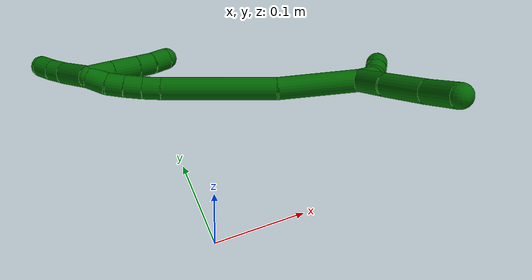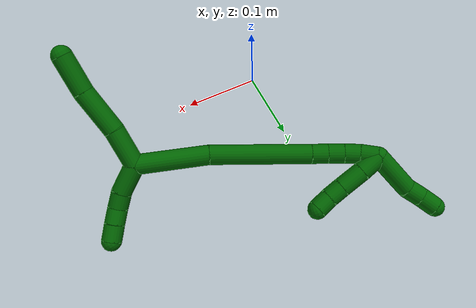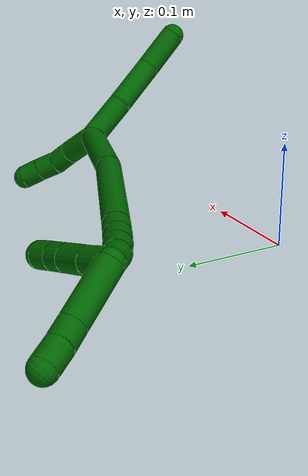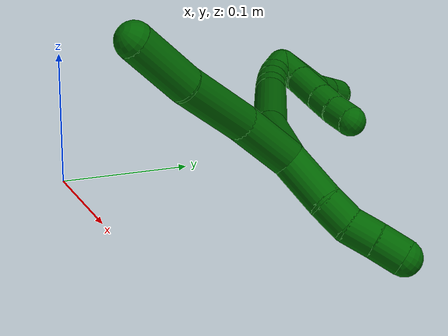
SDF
<sdf version="1.7">
 <world name="default">
  <model name="6">
   <static>0</static>
   <link name="6">
    <collision name="collision-cylinder-e_1_2_8">
     <pose>-0.000362 -7.5e-05 -0.023882 3.13847 -0.015165 -2.7356</pose>
     <geometry><cylinder><radius>0.0125</radius><length>0.04777</length></cylinder></geometry>
     <surface>
      <friction><ode><mu>1.16</mu><mu2>1.16</mu2><slip1>0</slip1><slip2>0</slip2></ode></friction>
      <contact><ode><kp>1e+06</kp><kd>1</kd><max_vel>0</max_vel><min_depth>0.001</min_depth></ode></contact>
     </surface>
    </collision>
    <visual name="visual-cylinder-e_1_2_8">
     <pose>-0.000362 -7.5e-05 -0.023882 3.13847 -0.015165 -2.7356</pose>
     <geometry><cylinder><radius>0.0125</radius><length>0.04777</length></cylinder></geometry>
     <material><ambient>0 0.392157 0.003922 1</ambient></material>
    </visual>
    <collision name="collision-cylinder-e_2_8_9">
     <pose>0.002362 -0.002535 -0.075269 3.05507 0.111337 1.82075</pose>
     <geometry><cylinder><radius>0.0125</radius><length>0.055561</length></cylinder></geometry>
     <surface>
      <friction><ode><mu>1.16</mu><mu2>1.16</mu2><slip1>0</slip1><slip2>0</slip2></ode></friction>
      <contact><ode><kp>1e+06</kp><kd>1</kd><max_vel>0</max_vel><min_depth>0.001</min_depth></ode></contact>
     </surface>
    </collision>
    <visual name="visual-cylinder-e_2_8_9">
     <pose>0.002362 -0.002535 -0.075269 3.05507 0.111337 1.82075</pose>
     <geometry><cylinder><radius>0.0125</radius><length>0.055561</length></cylinder></geometry>
     <material><ambient>0 0.392157 0.003922 1</ambient></material>
    </visual>
    <collision name="collision-cylinder-e_3_9_6">
     <pose>0.004257 -0.005433 -0.126073 3.11958 -0.051084 -2.32789</pose>
     <geometry><cylinder><radius>0.0125</radius><length>0.046669</length></cylinder></geometry>
     <surface>
      <friction><ode><mu>1.16</mu><mu2>1.16</mu2><slip1>0</slip1><slip2>0</slip2></ode></friction>
      <contact><ode><kp>1e+06</kp><kd>1</kd><max_vel>0</max_vel><min_depth>0.001</min_depth></ode></contact>
     </surface>
    </collision>
    <visual name="visual-cylinder-e_3_9_6">
     <pose>0.004257 -0.005433 -0.126073 3.11958 -0.051084 -2.32789</pose>
     <geometry><cylinder><radius>0.0125</radius><length>0.046669</length></cylinder></geometry>
     <material><ambient>0 0.392157 0.003922 1</ambient></material>
    </visual>
    <collision name="collision-cylinder-e_1_2_10">
     <pose>0.011889 -0.010127 0.010972 0.745352 0.672435 0.271579</pose>
     <geometry><cylinder><radius>0.0125</radius><length>0.038172</length></cylinder></geometry>
     <surface>
      <friction><ode><mu>1.16</mu><mu2>1.16</mu2><slip1>0</slip1><slip2>0</slip2></ode></friction>
      <contact><ode><kp>1e+06</kp><kd>1</kd><max_vel>0</max_vel><min_depth>0.001</min_depth></ode></contact>
     </surface>
    </collision>
    <visual name="visual-cylinder-e_1_2_10">
     <pose>0.011889 -0.010127 0.010972 0.745352 0.672435 0.271579</pose>
     <geometry><cylinder><radius>0.0125</radius><length>0.038172</length></cylinder></geometry>
     <material><ambient>0 0.392157 0.003922 1</ambient></material>
    </visual>
    <collision name="collision-cylinder-e_2_10_11">
     <pose>0.029017 -0.025036 0.029524 0.562833 0.529074 0.156301</pose>
     <geometry><cylinder><radius>0.0125</radius><length>0.020763</length></cylinder></geometry>
     <surface>
      <friction><ode><mu>1.16</mu><mu2>1.16</mu2><slip1>0</slip1><slip2>0</slip2></ode></friction>
      <contact><ode><kp>1e+06</kp><kd>1</kd><max_vel>0</max_vel><min_depth>0.001</min_depth></ode></contact>
     </surface>
    </collision>
    <visual name="visual-cylinder-e_2_10_11">
     <pose>0.029017 -0.025036 0.029524 0.562833 0.529074 0.156301</pose>
     <geometry><cylinder><radius>0.0125</radius><length>0.020763</length></cylinder></geometry>
     <material><ambient>0 0.392157 0.003922 1</ambient></material>
    </visual>
    <collision name="collision-cylinder-e_3_11_12">
     <pose>0.037059 -0.035997 0.044602 0.689321 0.280767 0.101373</pose>
     <geometry><cylinder><radius>0.0125</radius><length>0.020225</length></cylinder></geometry>
     <surface>
      <friction><ode><mu>1.16</mu><mu2>1.16</mu2><slip1>0</slip1><slip2>0</slip2></ode></friction>
      <contact><ode><kp>1e+06</kp><kd>1</kd><max_vel>0</max_vel><min_depth>0.001</min_depth></ode></contact>
     </surface>
    </collision>
    <visual name="visual-cylinder-e_3_11_12">
     <pose>0.037059 -0.035997 0.044602 0.689321 0.280767 0.101373</pose>
     <geometry><cylinder><radius>0.0125</radius><length>0.020225</length></cylinder></geometry>
     <material><ambient>0 0.392157 0.003922 1</ambient></material>
    </visual>
    <collision name="collision-cylinder-e_4_12_5">
     <pose>0.042923 -0.048138 0.060079 0.64158 0.298235 0.099752</pose>
     <geometry><cylinder><radius>0.0125</radius><length>0.02084</length></cylinder></geometry>
     <surface>
      <friction><ode><mu>1.16</mu><mu2>1.16</mu2><slip1>0</slip1><slip2>0</slip2></ode></friction>
      <contact><ode><kp>1e+06</kp><kd>1</kd><max_vel>0</max_vel><min_depth>0.001</min_depth></ode></contact>
     </surface>
    </collision>
    <visual name="visual-cylinder-e_4_12_5">
     <pose>0.042923 -0.048138 0.060079 0.64158 0.298235 0.099752</pose>
     <geometry><cylinder><radius>0.0125</radius><length>0.02084</length></cylinder></geometry>
     <material><ambient>0 0.392157 0.003922 1</ambient></material>
    </visual>
    <collision name="collision-cylinder-e_1_2_13">
     <pose>-0.028246 0.030779 0.016753 -1.07235 -0.678409 0.41336</pose>
     <geometry><cylinder><radius>0.0125</radius><length>0.090019</length></cylinder></geometry>
     <surface>
      <friction><ode><mu>1.16</mu><mu2>1.16</mu2><slip1>0</slip1><slip2>0</slip2></ode></friction>
      <contact><ode><kp>1e+06</kp><kd>1</kd><max_vel>0</max_vel><min_depth>0.001</min_depth></ode></contact>
     </surface>
    </collision>
    <visual name="visual-cylinder-e_1_2_13">
     <pose>-0.028246 0.030779 0.016753 -1.07235 -0.678409 0.41336</pose>
     <geometry><cylinder><radius>0.0125</radius><length>0.090019</length></cylinder></geometry>
     <material><ambient>0 0.392157 0.003922 1</ambient></material>
    </visual>
    <collision name="collision-cylinder-e_2_13_14">
     <pose>-0.097799 0.099014 0.063329 -0.898352 -0.711852 0.35464</pose>
     <geometry><cylinder><radius>0.0125</radius><length>0.126469</length></cylinder></geometry>
     <surface>
      <friction><ode><mu>1.16</mu><mu2>1.16</mu2><slip1>0</slip1><slip2>0</slip2></ode></friction>
      <contact><ode><kp>1e+06</kp><kd>1</kd><max_vel>0</max_vel><min_depth>0.001</min_depth></ode></contact>
     </surface>
    </collision>
    <visual name="visual-cylinder-e_2_13_14">
     <pose>-0.097799 0.099014 0.063329 -0.898352 -0.711852 0.35464</pose>
     <geometry><cylinder><radius>0.0125</radius><length>0.126469</length></cylinder></geometry>
     <material><ambient>0 0.392157 0.003922 1</ambient></material>
    </visual>
    <collision name="collision-cylinder-e_3_14_15">
     <pose>-0.146188 0.142308 0.097793 -0.899175 -0.759502 0.380532</pose>
     <geometry><cylinder><radius>0.0125</radius><length>0.020569</length></cylinder></geometry>
     <surface>
      <friction><ode><mu>1.16</mu><mu2>1.16</mu2><slip1>0</slip1><slip2>0</slip2></ode></friction>
      <contact><ode><kp>1e+06</kp><kd>1</kd><max_vel>0</max_vel><min_depth>0.001</min_depth></ode></contact>
     </surface>
    </collision>
    <visual name="visual-cylinder-e_3_14_15">
     <pose>-0.146188 0.142308 0.097793 -0.899175 -0.759502 0.380532</pose>
     <geometry><cylinder><radius>0.0125</radius><length>0.020569</length></cylinder></geometry>
     <material><ambient>0 0.392157 0.003922 1</ambient></material>
    </visual>
    <collision name="collision-cylinder-e_4_15_16">
     <pose>-0.160625 0.153572 0.106992 -0.872119 -0.804032 0.391173</pose>
     <geometry><cylinder><radius>0.0125</radius><length>0.020427</length></cylinder></geometry>
     <surface>
      <friction><ode><mu>1.16</mu><mu2>1.16</mu2><slip1>0</slip1><slip2>0</slip2></ode></friction>
      <contact><ode><kp>1e+06</kp><kd>1</kd><max_vel>0</max_vel><min_depth>0.001</min_depth></ode></contact>
     </surface>
    </collision>
    <visual name="visual-cylinder-e_4_15_16">
     <pose>-0.160625 0.153572 0.106992 -0.872119 -0.804032 0.391173</pose>
     <geometry><cylinder><radius>0.0125</radius><length>0.020427</length></cylinder></geometry>
     <material><ambient>0 0.392157 0.003922 1</ambient></material>
    </visual>
    <collision name="collision-cylinder-e_5_16_17">
     <pose>-0.17533 0.163913 0.116378 -0.794255 -0.817678 0.359499</pose>
     <geometry><cylinder><radius>0.0125</radius><length>0.020148</length></cylinder></geometry>
     <surface>
      <friction><ode><mu>1.16</mu><mu2>1.16</mu2><slip1>0</slip1><slip2>0</slip2></ode></friction>
      <contact><ode><kp>1e+06</kp><kd>1</kd><max_vel>0</max_vel><min_depth>0.001</min_depth></ode></contact>
     </surface>
    </collision>
    <visual name="visual-cylinder-e_5_16_17">
     <pose>-0.17533 0.163913 0.116378 -0.794255 -0.817678 0.359499</pose>
     <geometry><cylinder><radius>0.0125</radius><length>0.020148</length></cylinder></geometry>
     <material><ambient>0 0.392157 0.003922 1</ambient></material>
    </visual>
    <collision name="collision-cylinder-e_6_17_1">
     <pose>-0.191761 0.172017 0.126902 -0.510503 -0.94756 0.266008</pose>
     <geometry><cylinder><radius>0.0125</radius><length>0.022367</length></cylinder></geometry>
     <surface>
      <friction><ode><mu>1.16</mu><mu2>1.16</mu2><slip1>0</slip1><slip2>0</slip2></ode></friction>
      <contact><ode><kp>1e+06</kp><kd>1</kd><max_vel>0</max_vel><min_depth>0.001</min_depth></ode></contact>
     </surface>
    </collision>
    <visual name="visual-cylinder-e_6_17_1">
     <pose>-0.191761 0.172017 0.126902 -0.510503 -0.94756 0.266008</pose>
     <geometry><cylinder><radius>0.0125</radius><length>0.022367</length></cylinder></geometry>
     <material><ambient>0 0.392157 0.003922 1</ambient></material>
    </visual>
    <collision name="collision-cylinder-e_1_1_18">
     <pose>-0.20618 0.180417 0.159953 -0.188236 -0.189414 0.017933</pose>
     <geometry><cylinder><radius>0.0125</radius><length>0.056709</length></cylinder></geometry>
     <surface>
      <friction><ode><mu>1.16</mu><mu2>1.16</mu2><slip1>0</slip1><slip2>0</slip2></ode></friction>
      <contact><ode><kp>1e+06</kp><kd>1</kd><max_vel>0</max_vel><min_depth>0.001</min_depth></ode></contact>
     </surface>
    </collision>
    <visual name="visual-cylinder-e_1_1_18">
     <pose>-0.20618 0.180417 0.159953 -0.188236 -0.189414 0.017933</pose>
     <geometry><cylinder><radius>0.0125</radius><length>0.056709</length></cylinder></geometry>
     <material><ambient>0 0.392157 0.003922 1</ambient></material>
    </visual>
    <collision name="collision-cylinder-e_2_18_19">
     <pose>-0.216207 0.188337 0.196317 -0.292075 -0.46236 0.069216</pose>
     <geometry><cylinder><radius>0.0125</radius><length>0.021022</length></cylinder></geometry>
     <surface>
      <friction><ode><mu>1.16</mu><mu2>1.16</mu2><slip1>0</slip1><slip2>0</slip2></ode></friction>
      <contact><ode><kp>1e+06</kp><kd>1</kd><max_vel>0</max_vel><min_depth>0.001</min_depth></ode></contact>
     </surface>
    </collision>
    <visual name="visual-cylinder-e_2_18_19">
     <pose>-0.216207 0.188337 0.196317 -0.292075 -0.46236 0.069216</pose>
     <geometry><cylinder><radius>0.0125</radius><length>0.021022</length></cylinder></geometry>
     <material><ambient>0 0.392157 0.003922 1</ambient></material>
    </visual>
    <collision name="collision-cylinder-e_3_19_4">
     <pose>-0.22577 0.193243 0.215093 -0.221253 -0.453123 0.051201</pose>
     <geometry><cylinder><radius>0.0125</radius><length>0.022269</length></cylinder></geometry>
     <surface>
      <friction><ode><mu>1.16</mu><mu2>1.16</mu2><slip1>0</slip1><slip2>0</slip2></ode></friction>
      <contact><ode><kp>1e+06</kp><kd>1</kd><max_vel>0</max_vel><min_depth>0.001</min_depth></ode></contact>
     </surface>
    </collision>
    <visual name="visual-cylinder-e_3_19_4">
     <pose>-0.22577 0.193243 0.215093 -0.221253 -0.453123 0.051201</pose>
     <geometry><cylinder><radius>0.0125</radius><length>0.022269</length></cylinder></geometry>
     <material><ambient>0 0.392157 0.003922 1</ambient></material>
    </visual>
    <collision name="collision-cylinder-e_1_1_20">
     <pose>-0.191897 0.164631 0.135417 1.31025 0.685183 0.534919</pose>
     <geometry><cylinder><radius>0.0125</radius><length>0.02827</length></cylinder></geometry>
     <surface>
      <friction><ode><mu>1.16</mu><mu2>1.16</mu2><slip1>0</slip1><slip2>0</slip2></ode></friction>
      <contact><ode><kp>1e+06</kp><kd>1</kd><max_vel>0</max_vel><min_depth>0.001</min_depth></ode></contact>
     </surface>
    </collision>
    <visual name="visual-cylinder-e_1_1_20">
     <pose>-0.191897 0.164631 0.135417 1.31025 0.685183 0.534919</pose>
     <geometry><cylinder><radius>0.0125</radius><length>0.02827</length></cylinder></geometry>
     <material><ambient>0 0.392157 0.003922 1</ambient></material>
    </visual>
    <collision name="collision-cylinder-e_2_20_21">
     <pose>-0.172659 0.142266 0.140719 1.36324 0.706999 0.581785</pose>
     <geometry><cylinder><radius>0.0125</radius><length>0.031692</length></cylinder></geometry>
     <surface>
      <friction><ode><mu>1.16</mu><mu2>1.16</mu2><slip1>0</slip1><slip2>0</slip2></ode></friction>
      <contact><ode><kp>1e+06</kp><kd>1</kd><max_vel>0</max_vel><min_depth>0.001</min_depth></ode></contact>
     </surface>
    </collision>
    <visual name="visual-cylinder-e_2_20_21">
     <pose>-0.172659 0.142266 0.140719 1.36324 0.706999 0.581785</pose>
     <geometry><cylinder><radius>0.0125</radius><length>0.031692</length></cylinder></geometry>
     <material><ambient>0 0.392157 0.003922 1</ambient></material>
    </visual>
    <collision name="collision-cylinder-e_3_21_22">
     <pose>-0.155984 0.122948 0.144878 1.35172 0.691254 0.562166</pose>
     <geometry><cylinder><radius>0.0125</radius><length>0.020023</length></cylinder></geometry>
     <surface>
      <friction><ode><mu>1.16</mu><mu2>1.16</mu2><slip1>0</slip1><slip2>0</slip2></ode></friction>
      <contact><ode><kp>1e+06</kp><kd>1</kd><max_vel>0</max_vel><min_depth>0.001</min_depth></ode></contact>
     </surface>
    </collision>
    <visual name="visual-cylinder-e_3_21_22">
     <pose>-0.155984 0.122948 0.144878 1.35172 0.691254 0.562166</pose>
     <geometry><cylinder><radius>0.0125</radius><length>0.020023</length></cylinder></geometry>
     <material><ambient>0 0.392157 0.003922 1</ambient></material>
    </visual>
    <collision name="collision-cylinder-e_4_22_3">
     <pose>-0.143947 0.107484 0.148837 1.29071 0.600409 0.45796</pose>
     <geometry><cylinder><radius>0.0125</radius><length>0.020015</length></cylinder></geometry>
     <surface>
      <friction><ode><mu>1.16</mu><mu2>1.16</mu2><slip1>0</slip1><slip2>0</slip2></ode></friction>
      <contact><ode><kp>1e+06</kp><kd>1</kd><max_vel>0</max_vel><min_depth>0.001</min_depth></ode></contact>
     </surface>
    </collision>
    <visual name="visual-cylinder-e_4_22_3">
     <pose>-0.143947 0.107484 0.148837 1.29071 0.600409 0.45796</pose>
     <geometry><cylinder><radius>0.0125</radius><length>0.020015</length></cylinder></geometry>
     <material><ambient>0 0.392157 0.003922 1</ambient></material>
    </visual>
    <collision name="collision-sphere-3">
     <pose>-0.138293 0.099548 0.15112 0 -0 0</pose>
     <geometry><sphere><radius>0.0125</radius></sphere></geometry>
     <surface>
      <friction><ode><mu>1.16</mu><mu2>1.16</mu2><slip1>0</slip1><slip2>0</slip2></ode></friction>
      <contact><ode><kp>1e+06</kp><kd>1</kd><max_vel>0</max_vel><min_depth>0.001</min_depth></ode></contact>
     </surface>
    </collision>
    <visual name="visual-sphere-3">
     <pose>-0.138293 0.099548 0.15112 0 -0 0</pose>
     <geometry><sphere><radius>0.0125</radius></sphere></geometry>
     <material><ambient>0 0.392157 0.003922 1</ambient></material>
    </visual>
    <collision name="collision-sphere-22">
     <pose>-0.149602 0.115419 0.146554 0 -0 0</pose>
     <geometry><sphere><radius>0.0125</radius></sphere></geometry>
     <surface>
      <friction><ode><mu>1.16</mu><mu2>1.16</mu2><slip1>0</slip1><slip2>0</slip2></ode></friction>
      <contact><ode><kp>1e+06</kp><kd>1</kd><max_vel>0</max_vel><min_depth>0.001</min_depth></ode></contact>
     </surface>
    </collision>
    <visual name="visual-sphere-22">
     <pose>-0.149602 0.115419 0.146554 0 -0 0</pose>
     <geometry><sphere><radius>0.0125</radius></sphere></geometry>
     <material><ambient>0 0.392157 0.003922 1</ambient></material>
    </visual>
    <collision name="collision-sphere-21">
     <pose>-0.162366 0.130477 0.143202 0 -0 0</pose>
     <geometry><sphere><radius>0.0125</radius></sphere></geometry>
     <surface>
      <friction><ode><mu>1.16</mu><mu2>1.16</mu2><slip1>0</slip1><slip2>0</slip2></ode></friction>
      <contact><ode><kp>1e+06</kp><kd>1</kd><max_vel>0</max_vel><min_depth>0.001</min_depth></ode></contact>
     </surface>
    </collision>
    <visual name="visual-sphere-21">
     <pose>-0.162366 0.130477 0.143202 0 -0 0</pose>
     <geometry><sphere><radius>0.0125</radius></sphere></geometry>
     <material><ambient>0 0.392157 0.003922 1</ambient></material>
    </visual>
    <collision name="collision-sphere-20">
     <pose>-0.182952 0.154056 0.138236 0 -0 0</pose>
     <geometry><sphere><radius>0.0125</radius></sphere></geometry>
     <surface>
      <friction><ode><mu>1.16</mu><mu2>1.16</mu2><slip1>0</slip1><slip2>0</slip2></ode></friction>
      <contact><ode><kp>1e+06</kp><kd>1</kd><max_vel>0</max_vel><min_depth>0.001</min_depth></ode></contact>
     </surface>
    </collision>
    <visual name="visual-sphere-20">
     <pose>-0.182952 0.154056 0.138236 0 -0 0</pose>
     <geometry><sphere><radius>0.0125</radius></sphere></geometry>
     <material><ambient>0 0.392157 0.003922 1</ambient></material>
    </visual>
    <collision name="collision-sphere-4">
     <pose>-0.230645 0.19544 0.22486 0 -0 0</pose>
     <geometry><sphere><radius>0.0125</radius></sphere></geometry>
     <surface>
      <friction><ode><mu>1.16</mu><mu2>1.16</mu2><slip1>0</slip1><slip2>0</slip2></ode></friction>
      <contact><ode><kp>1e+06</kp><kd>1</kd><max_vel>0</max_vel><min_depth>0.001</min_depth></ode></contact>
     </surface>
    </collision>
    <visual name="visual-sphere-4">
     <pose>-0.230645 0.19544 0.22486 0 -0 0</pose>
     <geometry><sphere><radius>0.0125</radius></sphere></geometry>
     <material><ambient>0 0.392157 0.003922 1</ambient></material>
    </visual>
    <collision name="collision-sphere-11">
     <pose>0.034257 -0.029818 0.037104 0 -0 0</pose>
     <geometry><sphere><radius>0.0125</radius></sphere></geometry>
     <surface>
      <friction><ode><mu>1.16</mu><mu2>1.16</mu2><slip1>0</slip1><slip2>0</slip2></ode></friction>
      <contact><ode><kp>1e+06</kp><kd>1</kd><max_vel>0</max_vel><min_depth>0.001</min_depth></ode></contact>
     </surface>
    </collision>
    <visual name="visual-sphere-11">
     <pose>0.034257 -0.029818 0.037104 0 -0 0</pose>
     <geometry><sphere><radius>0.0125</radius></sphere></geometry>
     <material><ambient>0 0.392157 0.003922 1</ambient></material>
    </visual>
    <collision name="collision-sphere-10">
     <pose>0.023777 -0.020254 0.021944 0 -0 0</pose>
     <geometry><sphere><radius>0.0125</radius></sphere></geometry>
     <surface>
      <friction><ode><mu>1.16</mu><mu2>1.16</mu2><slip1>0</slip1><slip2>0</slip2></ode></friction>
      <contact><ode><kp>1e+06</kp><kd>1</kd><max_vel>0</max_vel><min_depth>0.001</min_depth></ode></contact>
     </surface>
    </collision>
    <visual name="visual-sphere-10">
     <pose>0.023777 -0.020254 0.021944 0 -0 0</pose>
     <geometry><sphere><radius>0.0125</radius></sphere></geometry>
     <material><ambient>0 0.392157 0.003922 1</ambient></material>
    </visual>
    <collision name="collision-sphere-6">
     <pose>0.003066 -0.005947 -0.149372 0 -0 0</pose>
     <geometry><sphere><radius>0.0125</radius></sphere></geometry>
     <surface>
      <friction><ode><mu>1.16</mu><mu2>1.16</mu2><slip1>0</slip1><slip2>0</slip2></ode></friction>
      <contact><ode><kp>1e+06</kp><kd>1</kd><max_vel>0</max_vel><min_depth>0.001</min_depth></ode></contact>
     </surface>
    </collision>
    <visual name="visual-sphere-6">
     <pose>0.003066 -0.005947 -0.149372 0 -0 0</pose>
     <geometry><sphere><radius>0.0125</radius></sphere></geometry>
     <material><ambient>0 0.392157 0.003922 1</ambient></material>
    </visual>
    <collision name="collision-sphere-9">
     <pose>0.005449 -0.00492 -0.102775 0 -0 0</pose>
     <geometry><sphere><radius>0.0125</radius></sphere></geometry>
     <surface>
      <friction><ode><mu>1.16</mu><mu2>1.16</mu2><slip1>0</slip1><slip2>0</slip2></ode></friction>
      <contact><ode><kp>1e+06</kp><kd>1</kd><max_vel>0</max_vel><min_depth>0.001</min_depth></ode></contact>
     </surface>
    </collision>
    <visual name="visual-sphere-9">
     <pose>0.005449 -0.00492 -0.102775 0 -0 0</pose>
     <geometry><sphere><radius>0.0125</radius></sphere></geometry>
     <material><ambient>0 0.392157 0.003922 1</ambient></material>
    </visual>
    <collision name="collision-sphere-2">
     <geometry><sphere><radius>0.0125</radius></sphere></geometry>
     <surface>
      <friction><ode><mu>1.16</mu><mu2>1.16</mu2><slip1>0</slip1><slip2>0</slip2></ode></friction>
      <contact><ode><kp>1e+06</kp><kd>1</kd><max_vel>0</max_vel><min_depth>0.001</min_depth></ode></contact>
     </surface>
    </collision>
    <visual name="visual-sphere-2">
     <geometry><sphere><radius>0.0125</radius></sphere></geometry>
     <material><ambient>0 0.392157 0.003922 1</ambient></material>
    </visual>
    <collision name="collision-sphere-19">
     <pose>-0.220896 0.191046 0.205326 0 -0 0</pose>
     <geometry><sphere><radius>0.0125</radius></sphere></geometry>
     <surface>
      <friction><ode><mu>1.16</mu><mu2>1.16</mu2><slip1>0</slip1><slip2>0</slip2></ode></friction>
      <contact><ode><kp>1e+06</kp><kd>1</kd><max_vel>0</max_vel><min_depth>0.001</min_depth></ode></contact>
     </surface>
    </collision>
    <visual name="visual-sphere-19">
     <pose>-0.220896 0.191046 0.205326 0 -0 0</pose>
     <geometry><sphere><radius>0.0125</radius></sphere></geometry>
     <material><ambient>0 0.392157 0.003922 1</ambient></material>
    </visual>
    <collision name="collision-sphere-8">
     <pose>-0.000724 -0.000149 -0.047764 0 -0 0</pose>
     <geometry><sphere><radius>0.0125</radius></sphere></geometry>
     <surface>
      <friction><ode><mu>1.16</mu><mu2>1.16</mu2><slip1>0</slip1><slip2>0</slip2></ode></friction>
      <contact><ode><kp>1e+06</kp><kd>1</kd><max_vel>0</max_vel><min_depth>0.001</min_depth></ode></contact>
     </surface>
    </collision>
    <visual name="visual-sphere-8">
     <pose>-0.000724 -0.000149 -0.047764 0 -0 0</pose>
     <geometry><sphere><radius>0.0125</radius></sphere></geometry>
     <material><ambient>0 0.392157 0.003922 1</ambient></material>
    </visual>
    <collision name="collision-sphere-12">
     <pose>0.039861 -0.042177 0.0521 0 -0 0</pose>
     <geometry><sphere><radius>0.0125</radius></sphere></geometry>
     <surface>
      <friction><ode><mu>1.16</mu><mu2>1.16</mu2><slip1>0</slip1><slip2>0</slip2></ode></friction>
      <contact><ode><kp>1e+06</kp><kd>1</kd><max_vel>0</max_vel><min_depth>0.001</min_depth></ode></contact>
     </surface>
    </collision>
    <visual name="visual-sphere-12">
     <pose>0.039861 -0.042177 0.0521 0 -0 0</pose>
     <geometry><sphere><radius>0.0125</radius></sphere></geometry>
     <material><ambient>0 0.392157 0.003922 1</ambient></material>
    </visual>
    <collision name="collision-sphere-5">
     <pose>0.045985 -0.054099 0.068059 0 -0 0</pose>
     <geometry><sphere><radius>0.0125</radius></sphere></geometry>
     <surface>
      <friction><ode><mu>1.16</mu><mu2>1.16</mu2><slip1>0</slip1><slip2>0</slip2></ode></friction>
      <contact><ode><kp>1e+06</kp><kd>1</kd><max_vel>0</max_vel><min_depth>0.001</min_depth></ode></contact>
     </surface>
    </collision>
    <visual name="visual-sphere-5">
     <pose>0.045985 -0.054099 0.068059 0 -0 0</pose>
     <geometry><sphere><radius>0.0125</radius></sphere></geometry>
     <material><ambient>0 0.392157 0.003922 1</ambient></material>
    </visual>
    <collision name="collision-sphere-13">
     <pose>-0.056492 0.061559 0.033506 0 -0 0</pose>
     <geometry><sphere><radius>0.0125</radius></sphere></geometry>
     <surface>
      <friction><ode><mu>1.16</mu><mu2>1.16</mu2><slip1>0</slip1><slip2>0</slip2></ode></friction>
      <contact><ode><kp>1e+06</kp><kd>1</kd><max_vel>0</max_vel><min_depth>0.001</min_depth></ode></contact>
     </surface>
    </collision>
    <visual name="visual-sphere-13">
     <pose>-0.056492 0.061559 0.033506 0 -0 0</pose>
     <geometry><sphere><radius>0.0125</radius></sphere></geometry>
     <material><ambient>0 0.392157 0.003922 1</ambient></material>
    </visual>
    <collision name="collision-sphere-14">
     <pose>-0.139106 0.13647 0.093152 0 -0 0</pose>
     <geometry><sphere><radius>0.0125</radius></sphere></geometry>
     <surface>
      <friction><ode><mu>1.16</mu><mu2>1.16</mu2><slip1>0</slip1><slip2>0</slip2></ode></friction>
      <contact><ode><kp>1e+06</kp><kd>1</kd><max_vel>0</max_vel><min_depth>0.001</min_depth></ode></contact>
     </surface>
    </collision>
    <visual name="visual-sphere-14">
     <pose>-0.139106 0.13647 0.093152 0 -0 0</pose>
     <geometry><sphere><radius>0.0125</radius></sphere></geometry>
     <material><ambient>0 0.392157 0.003922 1</ambient></material>
    </visual>
    <collision name="collision-sphere-15">
     <pose>-0.153269 0.148146 0.102434 0 -0 0</pose>
     <geometry><sphere><radius>0.0125</radius></sphere></geometry>
     <surface>
      <friction><ode><mu>1.16</mu><mu2>1.16</mu2><slip1>0</slip1><slip2>0</slip2></ode></friction>
      <contact><ode><kp>1e+06</kp><kd>1</kd><max_vel>0</max_vel><min_depth>0.001</min_depth></ode></contact>
     </surface>
    </collision>
    <visual name="visual-sphere-15">
     <pose>-0.153269 0.148146 0.102434 0 -0 0</pose>
     <geometry><sphere><radius>0.0125</radius></sphere></geometry>
     <material><ambient>0 0.392157 0.003922 1</ambient></material>
    </visual>
    <collision name="collision-sphere-16">
     <pose>-0.16798 0.158998 0.11155 0 -0 0</pose>
     <geometry><sphere><radius>0.0125</radius></sphere></geometry>
     <surface>
      <friction><ode><mu>1.16</mu><mu2>1.16</mu2><slip1>0</slip1><slip2>0</slip2></ode></friction>
      <contact><ode><kp>1e+06</kp><kd>1</kd><max_vel>0</max_vel><min_depth>0.001</min_depth></ode></contact>
     </surface>
    </collision>
    <visual name="visual-sphere-16">
     <pose>-0.16798 0.158998 0.11155 0 -0 0</pose>
     <geometry><sphere><radius>0.0125</radius></sphere></geometry>
     <material><ambient>0 0.392157 0.003922 1</ambient></material>
    </visual>
    <collision name="collision-sphere-17">
     <pose>-0.18268 0.168828 0.121207 0 -0 0</pose>
     <geometry><sphere><radius>0.0125</radius></sphere></geometry>
     <surface>
      <friction><ode><mu>1.16</mu><mu2>1.16</mu2><slip1>0</slip1><slip2>0</slip2></ode></friction>
      <contact><ode><kp>1e+06</kp><kd>1</kd><max_vel>0</max_vel><min_depth>0.001</min_depth></ode></contact>
     </surface>
    </collision>
    <visual name="visual-sphere-17">
     <pose>-0.18268 0.168828 0.121207 0 -0 0</pose>
     <geometry><sphere><radius>0.0125</radius></sphere></geometry>
     <material><ambient>0 0.392157 0.003922 1</ambient></material>
    </visual>
    <collision name="collision-sphere-1">
     <pose>-0.200841 0.175206 0.132597 0 -0 0</pose>
     <geometry><sphere><radius>0.0125</radius></sphere></geometry>
     <surface>
      <friction><ode><mu>1.16</mu><mu2>1.16</mu2><slip1>0</slip1><slip2>0</slip2></ode></friction>
      <contact><ode><kp>1e+06</kp><kd>1</kd><max_vel>0</max_vel><min_depth>0.001</min_depth></ode></contact>
     </surface>
    </collision>
    <visual name="visual-sphere-1">
     <pose>-0.200841 0.175206 0.132597 0 -0 0</pose>
     <geometry><sphere><radius>0.0125</radius></sphere></geometry>
     <material><ambient>0 0.392157 0.003922 1</ambient></material>
    </visual>
    <collision name="collision-sphere-18">
     <pose>-0.211519 0.185629 0.187309 0 -0 0</pose>
     <geometry><sphere><radius>0.0125</radius></sphere></geometry>
     <surface>
      <friction><ode><mu>1.16</mu><mu2>1.16</mu2><slip1>0</slip1><slip2>0</slip2></ode></friction>
      <contact><ode><kp>1e+06</kp><kd>1</kd><max_vel>0</max_vel><min_depth>0.001</min_depth></ode></contact>
     </surface>
    </collision>
    <visual name="visual-sphere-18">
     <pose>-0.211519 0.185629 0.187309 0 -0 0</pose>
     <geometry><sphere><radius>0.0125</radius></sphere></geometry>
     <material><ambient>0 0.392157 0.003922 1</ambient></material>
    </visual>
    <inertial>
     <pose>-0.085566 0.076989 0.057376 0 -0 0</pose>
     <mass>0.75</mass>
     <inertia>
      <ixx>0.000255</ixx>
      <ixy>0</ixy>
      <ixz>0</ixz>
      <iyy>0.000318</iyy>
      <iyz>0</iyz>
      <izz>2.4e-05</izz>
     </inertia>
    </inertial>
   </link>
   <pose>0.203728 0.096295 0.06713 -2.61966 0.751979 -0.698265</pose>
  </model>
 </world>
</sdf>
